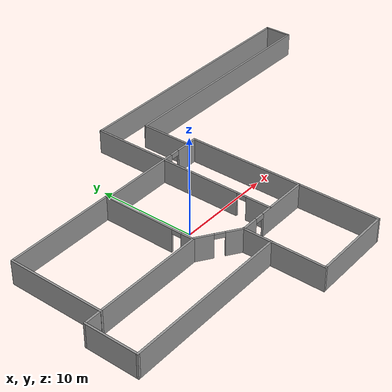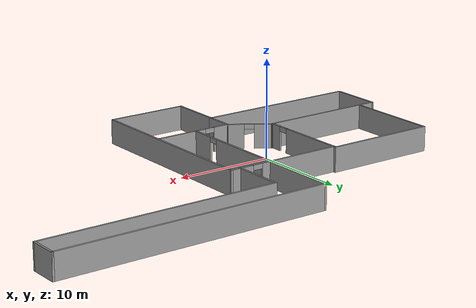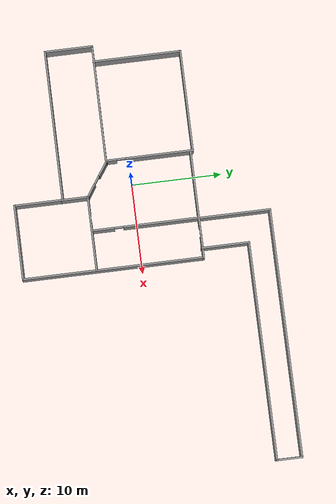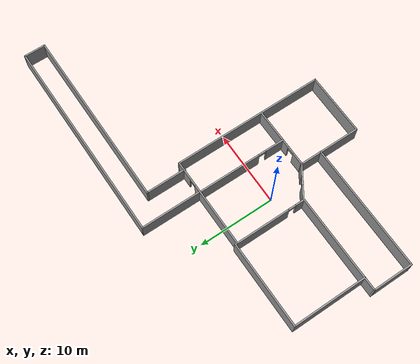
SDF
<?xml version='1.0'?>
<sdf version='1.4'>

  <model name='LayoutTest1'>
    <link name='Wall_1'>
      <collision name='Wall_1_Collision'>
        <geometry>
          <box>
            <size>16.7201 0.2 2.5</size>
          </box>
        </geometry>
        <pose>0 0 1.25 0 -0 0</pose>
      </collision>
      <visual name='Wall_1_Visual'>
        <pose>0 0 1.25 0 -0 0</pose>
        <geometry>
          <box>
            <size>16.7201 0.2 2.5</size>
          </box>
        </geometry>
        <material>
          <script>
            <uri>file://media/materials/scripts/gazebo.material</uri>
            <name>Gazebo/Grey</name>
          </script>
        </material>
      </visual>
      <velocity_decay>
        <linear>0</linear>
        <angular>0</angular>
      </velocity_decay>
      <pose>-7.42151 -7.78683 0 0 -0 3.14159</pose>
    </link>
    <link name='Wall_11'>
      <collision name='Wall_11_Collision'>
        <geometry>
          <box>
            <size>5.56582 0.2 2.5</size>
          </box>
        </geometry>
        <pose>0 0 1.25 0 -0 0</pose>
      </collision>
      <visual name='Wall_11_Visual'>
        <pose>0 0 1.25 0 -0 0</pose>
        <geometry>
          <box>
            <size>5.56582 0.2 2.5</size>
          </box>
        </geometry>
        <material>
          <script>
            <uri>file://media/materials/scripts/gazebo.material</uri>
            <name>Gazebo/Grey</name>
          </script>
        </material>
      </visual>
      <velocity_decay>
        <linear>0</linear>
        <angular>0</angular>
      </velocity_decay>
      <pose>1.01156 -10.4521 0 0 0 -1.5708</pose>
    </link>
    <link name='Wall_12'>
      <collision name='Wall_12_Collision'>
        <geometry>
          <box>
            <size>8.40197 0.2 2.5</size>
          </box>
        </geometry>
        <pose>0 0 1.25 0 -0 0</pose>
      </collision>
      <visual name='Wall_12_Visual'>
        <pose>0 0 1.25 0 -0 0</pose>
        <geometry>
          <box>
            <size>8.40197 0.2 2.5</size>
          </box>
        </geometry>
        <material>
          <script>
            <uri>file://media/materials/scripts/gazebo.material</uri>
            <name>Gazebo/Grey</name>
          </script>
        </material>
      </visual>
      <velocity_decay>
        <linear>0</linear>
        <angular>0</angular>
      </velocity_decay>
      <pose>5.11254 -13.135 0 0 -0 0</pose>
    </link>
    <link name='Wall_13'>
      <collision name='Wall_13_Collision'>
        <geometry>
          <box>
            <size>20.2216 0.2 2.5</size>
          </box>
        </geometry>
        <pose>0 0 1.25 0 -0 0</pose>
      </collision>
      <visual name='Wall_13_Visual'>
        <pose>0 0 1.25 0 -0 0</pose>
        <geometry>
          <box>
            <size>20.2216 0.2 2.5</size>
          </box>
        </geometry>
        <material>
          <script>
            <uri>file://media/materials/scripts/gazebo.material</uri>
            <name>Gazebo/Grey</name>
          </script>
        </material>
      </visual>
      <velocity_decay>
        <linear>0</linear>
        <angular>0</angular>
      </velocity_decay>
      <pose>9.21353 -3.12424 0 0 -0 1.5708</pose>
    </link>
    <link name='Wall_14'>
      <pose>3.24107 6.88655 0 0 -0 3.14159</pose>
      <visual name='Wall_14_Visual_0'>
        <pose>-4.80434 0 1.25 0 -0 0</pose>
        <geometry>
          <box>
            <size>2.53623 0.2 2.5</size>
          </box>
        </geometry>
        <material>
          <script>
            <uri>file://media/materials/scripts/gazebo.material</uri>
            <name>Gazebo/Grey</name>
          </script>
        </material>
      </visual>
      <collision name='Wall_14_Collision_0'>
        <geometry>
          <box>
            <size>2.53623 0.2 2.5</size>
          </box>
        </geometry>
        <pose>-4.80434 0 1.25 0 -0 0</pose>
      </collision>
      <visual name='Wall_14_Visual_1'>
        <pose>1.76811 0 1.25 0 -0 0</pose>
        <geometry>
          <box>
            <size>8.60869 0.2 2.5</size>
          </box>
        </geometry>
        <material>
          <script>
            <uri>file://media/materials/scripts/gazebo.material</uri>
            <name>Gazebo/Grey</name>
          </script>
        </material>
      </visual>
      <collision name='Wall_14_Collision_1'>
        <geometry>
          <box>
            <size>8.60869 0.2 2.5</size>
          </box>
        </geometry>
        <pose>1.76811 0 1.25 0 -0 0</pose>
      </collision>
      <visual name='Wall_14_Visual_2'>
        <pose>-3.03623 0 2.25 0 -0 0</pose>
        <geometry>
          <box>
            <size>1 0.2 0.5</size>
          </box>
        </geometry>
        <material>
          <script>
            <uri>file://media/materials/scripts/gazebo.material</uri>
            <name>Gazebo/Grey</name>
          </script>
        </material>
      </visual>
      <collision name='Wall_14_Collision_2'>
        <geometry>
          <box>
            <size>1 0.2 0.5</size>
          </box>
        </geometry>
        <pose>-3.03623 0 2.25 0 -0 0</pose>
      </collision>
    </link>
    <link name='Wall_16'>
      <pose>5.12971 -4.99488 0 0 -0 0</pose>
      <visual name='Wall_16_Visual_0'>
        <pose>-3.29542 0 1.25 0 -0 0</pose>
        <geometry>
          <box>
            <size>1.73197 0.2 2.5</size>
          </box>
        </geometry>
        <material>
          <script>
            <uri>file://media/materials/scripts/gazebo.material</uri>
            <name>Gazebo/Grey</name>
          </script>
        </material>
      </visual>
      <collision name='Wall_16_Collision_0'>
        <geometry>
          <box>
            <size>1.73197 0.2 2.5</size>
          </box>
        </geometry>
        <pose>-3.29542 0 1.25 0 -0 0</pose>
      </collision>
      <visual name='Wall_16_Visual_1'>
        <pose>1.36598 0 1.25 0 -0 0</pose>
        <geometry>
          <box>
            <size>5.59083 0.2 2.5</size>
          </box>
        </geometry>
        <material>
          <script>
            <uri>file://media/materials/scripts/gazebo.material</uri>
            <name>Gazebo/Grey</name>
          </script>
        </material>
      </visual>
      <collision name='Wall_16_Collision_1'>
        <geometry>
          <box>
            <size>5.59083 0.2 2.5</size>
          </box>
        </geometry>
        <pose>1.36598 0 1.25 0 -0 0</pose>
      </collision>
      <visual name='Wall_16_Visual_2'>
        <pose>-1.92943 0 2.25 0 -0 0</pose>
        <geometry>
          <box>
            <size>1 0.2 0.5</size>
          </box>
        </geometry>
        <material>
          <script>
            <uri>file://media/materials/scripts/gazebo.material</uri>
            <name>Gazebo/Grey</name>
          </script>
        </material>
      </visual>
      <collision name='Wall_16_Collision_2'>
        <geometry>
          <box>
            <size>1 0.2 0.5</size>
          </box>
        </geometry>
        <pose>-1.92943 0 2.25 0 -0 0</pose>
      </collision>
    </link>
    <link name='Wall_18'>
      <pose>4.79575 0.878416 0 0 -0 1.5708</pose>
      <visual name='Wall_18_Visual_0'>
        <pose>-4.66426 0 1.25 0 -0 0</pose>
        <geometry>
          <box>
            <size>2.5981 0.2 2.5</size>
          </box>
        </geometry>
        <material>
          <script>
            <uri>file://media/materials/scripts/gazebo.material</uri>
            <name>Gazebo/Grey</name>
          </script>
        </material>
      </visual>
      <collision name='Wall_18_Collision_0'>
        <geometry>
          <box>
            <size>2.5981 0.2 2.5</size>
          </box>
        </geometry>
        <pose>-4.66426 0 1.25 0 -0 0</pose>
      </collision>
      <visual name='Wall_18_Visual_1'>
        <pose>1.79905 0 1.25 0 -0 0</pose>
        <geometry>
          <box>
            <size>8.32853 0.2 2.5</size>
          </box>
        </geometry>
        <material>
          <script>
            <uri>file://media/materials/scripts/gazebo.material</uri>
            <name>Gazebo/Grey</name>
          </script>
        </material>
      </visual>
      <collision name='Wall_18_Collision_1'>
        <geometry>
          <box>
            <size>8.32853 0.2 2.5</size>
          </box>
        </geometry>
        <pose>1.79905 0 1.25 0 -0 0</pose>
      </collision>
      <visual name='Wall_18_Visual_2'>
        <pose>-2.86521 0 2.25 0 -0 0</pose>
        <geometry>
          <box>
            <size>1 0.2 0.5</size>
          </box>
        </geometry>
        <material>
          <script>
            <uri>file://media/materials/scripts/gazebo.material</uri>
            <name>Gazebo/Grey</name>
          </script>
        </material>
      </visual>
      <collision name='Wall_18_Collision_2'>
        <geometry>
          <box>
            <size>1 0.2 0.5</size>
          </box>
        </geometry>
        <pose>-2.86521 0 2.25 0 -0 0</pose>
      </collision>
    </link>
    <link name='Wall_2'>
      <collision name='Wall_2_Collision'>
        <geometry>
          <box>
            <size>5.46575 0.2 2.5</size>
          </box>
        </geometry>
        <pose>0 0 1.25 0 -0 0</pose>
      </collision>
      <visual name='Wall_2_Visual'>
        <pose>0 0 1.25 0 -0 0</pose>
        <geometry>
          <box>
            <size>5.46575 0.2 2.5</size>
          </box>
        </geometry>
        <material>
          <script>
            <uri>file://media/materials/scripts/gazebo.material</uri>
            <name>Gazebo/Grey</name>
          </script>
        </material>
      </visual>
      <velocity_decay>
        <linear>0</linear>
        <angular>0</angular>
      </velocity_decay>
      <pose>-15.6815 -5.15395 0 0 -0 1.5708</pose>
    </link>
    <link name='Wall_21'>
      <collision name='Wall_21_Collision'>
        <geometry>
          <box>
            <size>7.905 0.2 2.5</size>
          </box>
        </geometry>
        <pose>0 0 1.25 0 -0 0</pose>
      </collision>
      <visual name='Wall_21_Visual'>
        <pose>0 0 1.25 0 -0 0</pose>
        <geometry>
          <box>
            <size>7.905 0.2 2.5</size>
          </box>
        </geometry>
        <material>
          <script>
            <uri>file://media/materials/scripts/gazebo.material</uri>
            <name>Gazebo/Grey</name>
          </script>
        </material>
      </visual>
      <velocity_decay>
        <linear>0</linear>
        <angular>0</angular>
      </velocity_decay>
      <pose>4.84319 10.9273 0 0 -0 1.5708</pose>
    </link>
    <link name='Wall_22'>
      <collision name='Wall_22_Collision'>
        <geometry>
          <box>
            <size>27.57 0.2 2.5</size>
          </box>
        </geometry>
        <pose>0 0 1.25 0 -0 0</pose>
      </collision>
      <visual name='Wall_22_Visual'>
        <pose>0 0 1.25 0 -0 0</pose>
        <geometry>
          <box>
            <size>27.57 0.2 2.5</size>
          </box>
        </geometry>
        <material>
          <script>
            <uri>file://media/materials/scripts/gazebo.material</uri>
            <name>Gazebo/Grey</name>
          </script>
        </material>
      </visual>
      <velocity_decay>
        <linear>0</linear>
        <angular>0</angular>
      </velocity_decay>
      <pose>18.5282 14.7798 0 0 -0 0</pose>
    </link>
    <link name='Wall_23'>
      <collision name='Wall_23_Collision'>
        <geometry>
          <box>
            <size>2.96 0.2 2.5</size>
          </box>
        </geometry>
        <pose>0 0 1.25 0 -0 0</pose>
      </collision>
      <visual name='Wall_23_Visual'>
        <pose>0 0 1.25 0 -0 0</pose>
        <geometry>
          <box>
            <size>2.96 0.2 2.5</size>
          </box>
        </geometry>
        <material>
          <script>
            <uri>file://media/materials/scripts/gazebo.material</uri>
            <name>Gazebo/Grey</name>
          </script>
        </material>
      </visual>
      <velocity_decay>
        <linear>0</linear>
        <angular>0</angular>
      </velocity_decay>
      <pose>32.2132 13.3998 0 0 0 -1.5708</pose>
    </link>
    <link name='Wall_24'>
      <collision name='Wall_24_Collision'>
        <geometry>
          <box>
            <size>24.235 0.2 2.5</size>
          </box>
        </geometry>
        <pose>0 0 1.25 0 -0 0</pose>
      </collision>
      <visual name='Wall_24_Visual'>
        <pose>0 0 1.25 0 -0 0</pose>
        <geometry>
          <box>
            <size>24.235 0.2 2.5</size>
          </box>
        </geometry>
        <material>
          <script>
            <uri>file://media/materials/scripts/gazebo.material</uri>
            <name>Gazebo/Grey</name>
          </script>
        </material>
      </visual>
      <velocity_decay>
        <linear>0</linear>
        <angular>0</angular>
      </velocity_decay>
      <pose>20.1957 12.0198 0 0 -0 3.14159</pose>
    </link>
    <link name='Wall_25'>
      <collision name='Wall_25_Collision'>
        <geometry>
          <box>
            <size>5.4258 0.2 2.5</size>
          </box>
        </geometry>
        <pose>0 0 1.25 0 -0 0</pose>
      </collision>
      <visual name='Wall_25_Visual'>
        <pose>0 0 1.25 0 -0 0</pose>
        <geometry>
          <box>
            <size>5.4258 0.2 2.5</size>
          </box>
        </geometry>
        <material>
          <script>
            <uri>file://media/materials/scripts/gazebo.material</uri>
            <name>Gazebo/Grey</name>
          </script>
        </material>
      </visual>
      <velocity_decay>
        <linear>0</linear>
        <angular>0</angular>
      </velocity_decay>
      <pose>8.17819 9.40688 0 0 0 -1.5708</pose>
    </link>
    <link name='Wall_3'>
      <collision name='Wall_3_Collision'>
        <geometry>
          <box>
            <size>13.2884 0.2 2.5</size>
          </box>
        </geometry>
        <pose>0 0 1.25 0 -0 0</pose>
      </collision>
      <visual name='Wall_3_Visual'>
        <pose>0 0 1.25 0 -0 0</pose>
        <geometry>
          <box>
            <size>13.2884 0.2 2.5</size>
          </box>
        </geometry>
        <material>
          <script>
            <uri>file://media/materials/scripts/gazebo.material</uri>
            <name>Gazebo/Grey</name>
          </script>
        </material>
      </visual>
      <velocity_decay>
        <linear>0</linear>
        <angular>0</angular>
      </velocity_decay>
      <pose>-9.13734 -2.52108 0 0 -0 0</pose>
    </link>
    <link name='Wall_4'>
      <pose>-0.785837 -3.74538 0 0 0 -0.59541</pose>
      <visual name='Wall_4_Visual_0'>
        <pose>-1.35917 0 1.25 0 -0 0</pose>
        <geometry>
          <box>
            <size>1.84757 0.2 2.5</size>
          </box>
        </geometry>
        <material>
          <script>
            <uri>file://media/materials/scripts/gazebo.material</uri>
            <name>Gazebo/Grey</name>
          </script>
        </material>
      </visual>
      <collision name='Wall_4_Collision_0'>
        <geometry>
          <box>
            <size>1.84757 0.2 2.5</size>
          </box>
        </geometry>
        <pose>-1.35917 0 1.25 0 -0 0</pose>
      </collision>
      <visual name='Wall_4_Visual_1'>
        <pose>1.42378 0 1.25 0 -0 0</pose>
        <geometry>
          <box>
            <size>1.71833 0.2 2.5</size>
          </box>
        </geometry>
        <material>
          <script>
            <uri>file://media/materials/scripts/gazebo.material</uri>
            <name>Gazebo/Grey</name>
          </script>
        </material>
      </visual>
      <collision name='Wall_4_Collision_1'>
        <geometry>
          <box>
            <size>1.71833 0.2 2.5</size>
          </box>
        </geometry>
        <pose>1.42378 0 1.25 0 -0 0</pose>
      </collision>
      <visual name='Wall_4_Visual_2'>
        <pose>0.064617 0 2.25 0 -0 0</pose>
        <geometry>
          <box>
            <size>1 0.2 0.5</size>
          </box>
        </geometry>
        <material>
          <script>
            <uri>file://media/materials/scripts/gazebo.material</uri>
            <name>Gazebo/Grey</name>
          </script>
        </material>
      </visual>
      <collision name='Wall_4_Collision_2'>
        <geometry>
          <box>
            <size>1 0.2 0.5</size>
          </box>
        </geometry>
        <pose>0.064617 0 2.25 0 -0 0</pose>
      </collision>
    </link>
    <link name='Wall_5'>
      <collision name='Wall_5_Collision'>
        <geometry>
          <box>
            <size>3.08586 0.2 2.5</size>
          </box>
        </geometry>
        <pose>0 0 1.25 0 -0 0</pose>
      </collision>
      <visual name='Wall_5_Visual'>
        <pose>0 0 1.25 0 -0 0</pose>
        <geometry>
          <box>
            <size>3.08586 0.2 2.5</size>
          </box>
        </geometry>
        <material>
          <script>
            <uri>file://media/materials/scripts/gazebo.material</uri>
            <name>Gazebo/Grey</name>
          </script>
        </material>
      </visual>
      <velocity_decay>
        <linear>0</linear>
        <angular>0</angular>
      </velocity_decay>
      <pose>1.02147 -6.41262 0 0 0 -1.5708</pose>
    </link>
    <link name='Wall_7'>
      <collision name='Wall_7_Collision'>
        <geometry>
          <box>
            <size>9.88691 0.2 2.5</size>
          </box>
        </geometry>
        <pose>0 0 1.25 0 -0 0</pose>
      </collision>
      <visual name='Wall_7_Visual'>
        <pose>0 0 1.25 0 -0 0</pose>
        <geometry>
          <box>
            <size>9.88691 0.2 2.5</size>
          </box>
        </geometry>
        <material>
          <script>
            <uri>file://media/materials/scripts/gazebo.material</uri>
            <name>Gazebo/Grey</name>
          </script>
        </material>
      </visual>
      <velocity_decay>
        <linear>0</linear>
        <angular>0</angular>
      </velocity_decay>
      <pose>-13.9548 2.30666 0 0 -0 1.5708</pose>
    </link>
    <link name='Wall_8'>
      <collision name='Wall_8_Collision'>
        <geometry>
          <box>
            <size>11.4164 0.2 2.5</size>
          </box>
        </geometry>
        <pose>0 0 1.25 0 -0 0</pose>
      </collision>
      <visual name='Wall_8_Visual'>
        <pose>0 0 1.25 0 -0 0</pose>
        <geometry>
          <box>
            <size>11.4164 0.2 2.5</size>
          </box>
        </geometry>
        <material>
          <script>
            <uri>file://media/materials/scripts/gazebo.material</uri>
            <name>Gazebo/Grey</name>
          </script>
        </material>
      </visual>
      <velocity_decay>
        <linear>0</linear>
        <angular>0</angular>
      </velocity_decay>
      <pose>-8.3466 7.15012 0 0 -0 0</pose>
    </link>
    <link name='Wall_9'>
      <pose>-2.7384 2.33215 0 0 0 -1.5708</pose>
      <visual name='Wall_9_Visual_0'>
        <pose>-1.14123 0 1.25 0 -0 0</pose>
        <geometry>
          <box>
            <size>7.55346 0.2 2.5</size>
          </box>
        </geometry>
        <material>
          <script>
            <uri>file://media/materials/scripts/gazebo.material</uri>
            <name>Gazebo/Grey</name>
          </script>
        </material>
      </visual>
      <collision name='Wall_9_Collision_0'>
        <geometry>
          <box>
            <size>7.55346 0.2 2.5</size>
          </box>
        </geometry>
        <pose>-1.14123 0 1.25 0 -0 0</pose>
      </collision>
      <visual name='Wall_9_Visual_1'>
        <pose>4.27673 0 1.25 0 -0 0</pose>
        <geometry>
          <box>
            <size>1.28246 0.2 2.5</size>
          </box>
        </geometry>
        <material>
          <script>
            <uri>file://media/materials/scripts/gazebo.material</uri>
            <name>Gazebo/Grey</name>
          </script>
        </material>
      </visual>
      <collision name='Wall_9_Collision_1'>
        <geometry>
          <box>
            <size>1.28246 0.2 2.5</size>
          </box>
        </geometry>
        <pose>4.27673 0 1.25 0 -0 0</pose>
      </collision>
      <visual name='Wall_9_Visual_2'>
        <pose>3.1355 0 2.25 0 -0 0</pose>
        <geometry>
          <box>
            <size>1 0.2 0.5</size>
          </box>
        </geometry>
        <material>
          <script>
            <uri>file://media/materials/scripts/gazebo.material</uri>
            <name>Gazebo/Grey</name>
          </script>
        </material>
      </visual>
      <collision name='Wall_9_Collision_2'>
        <geometry>
          <box>
            <size>1 0.2 0.5</size>
          </box>
        </geometry>
        <pose>3.1355 0 2.25 0 -0 0</pose>
      </collision>
    </link>
    <static>1</static>
  </model>
</sdf>
